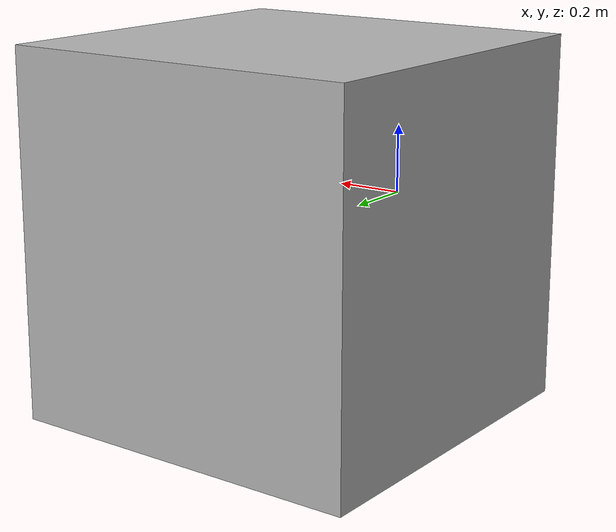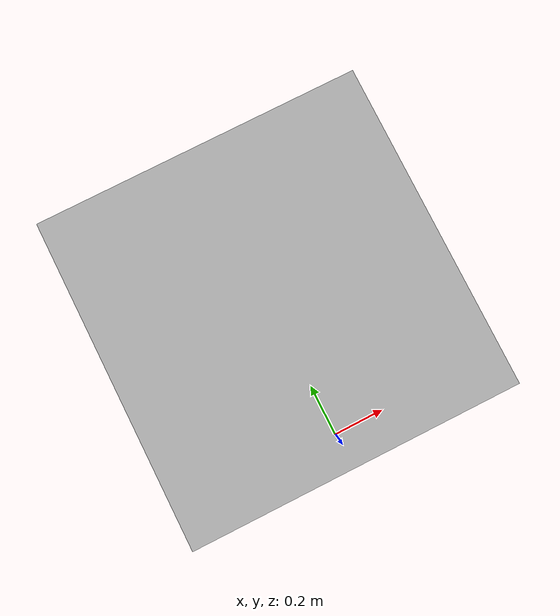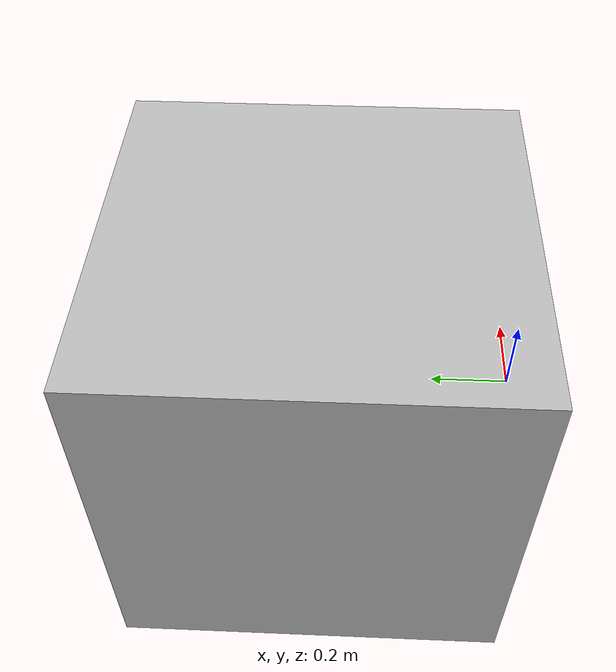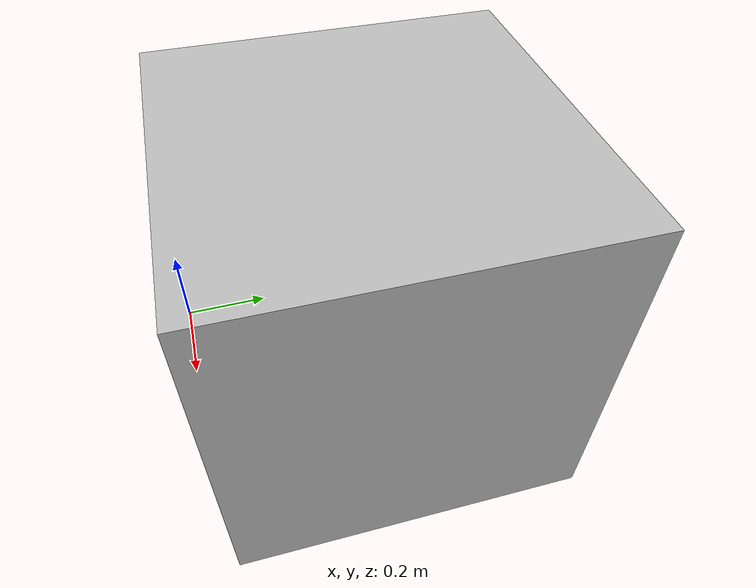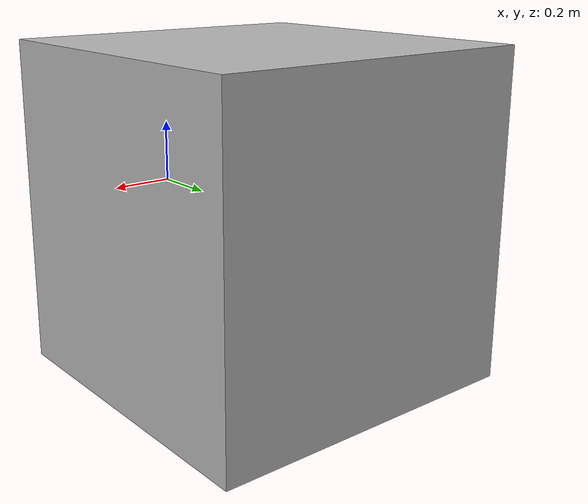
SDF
<?xml version="1.0" ?>
<sdf version="1.6">
  <world name="default">
    <model name="box">
    <pose>0 0.5 0.0 0.0 0.0 0.0</pose>
      <link>
        <inertial>
          <mass>0.05</mass>
        </inertial>

        <visual name="visual">
          <geometry>
            <box>
              <size>1.0 1.0 1.0</size>
            </box>
          </geometry>
        </visual>
        <collision name="collision">
          <geometry>
            <box>
              <size>1.0 1.0 1.0</size>
            </box>
          </geometry>
          <surface>
            <friction>
              <ode>
                <mu>.1</mu>
                <mu2>.1</mu2>
              </ode>
            </friction>
          </surface>

        </collision>
      </link>
    </model>
  </world>
</sdf>
